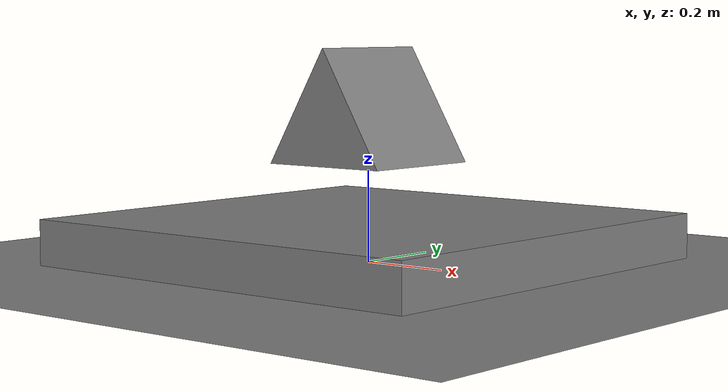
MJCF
<mujoco model="mesh-on-mesh">
  <option gravity="0 0 -9.81" timestep="0.001" integrator="RK4">
    <flag multiccd="enable"/>
  </option>

  <asset>
    <!-- Platform: box mesh, 1x1x0.1 -->
    <mesh name="platform"
          vertex="-0.5 -0.5 -0.05  0.5 -0.5 -0.05  0.5 0.5 -0.05  -0.5 0.5 -0.05
                  -0.5 -0.5  0.05  0.5 -0.5  0.05  0.5 0.5  0.05  -0.5 0.5  0.05"
          face="0 2 1  0 3 2  4 5 6  4 6 7
                0 5 4  0 1 5  2 7 6  2 3 7
                0 7 3  0 4 7  1 6 5  1 2 6"/>

    <!-- Wedge: triangular prism, centered at volumetric centroid.
         Cross-section triangle (xz): (-0.15,0), (0.15,0), (0,0.25)
         Centroid z = 0.25/3 ≈ 0.0833, subtracted from all vertices. -->
    <mesh name="wedge"
          vertex="-0.15 -0.15 -0.08333   0.15 -0.15 -0.08333   0.0 -0.15  0.16667
                  -0.15  0.15 -0.08333   0.15  0.15 -0.08333   0.0  0.15  0.16667"
          face="0 1 2  3 5 4
                0 3 4  0 4 1  1 4 5  1 5 2  2 5 3  2 3 0"/>
  </asset>

  <worldbody>
    <geom type="plane" size="2 2 0.01"/>
    <geom name="platform" type="mesh" mesh="platform" pos="0 0 0.05"/>
    <body name="wedge" pos="0 0 0.3">
      <joint type="free"/>
      <geom name="wedge" type="mesh" mesh="wedge" density="1000"/>
    </body>
  </worldbody>
</mujoco>
